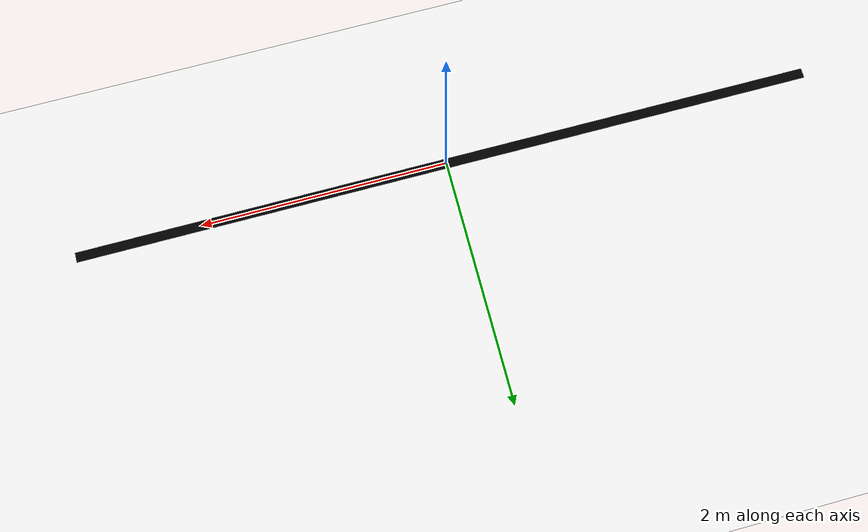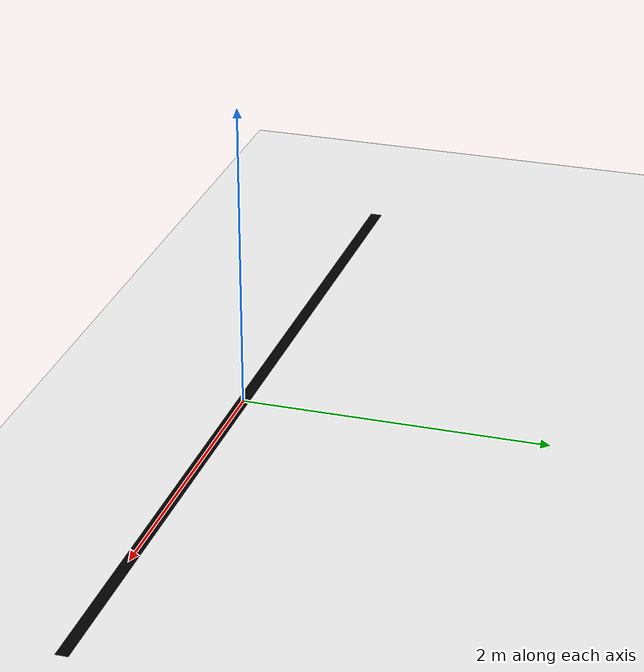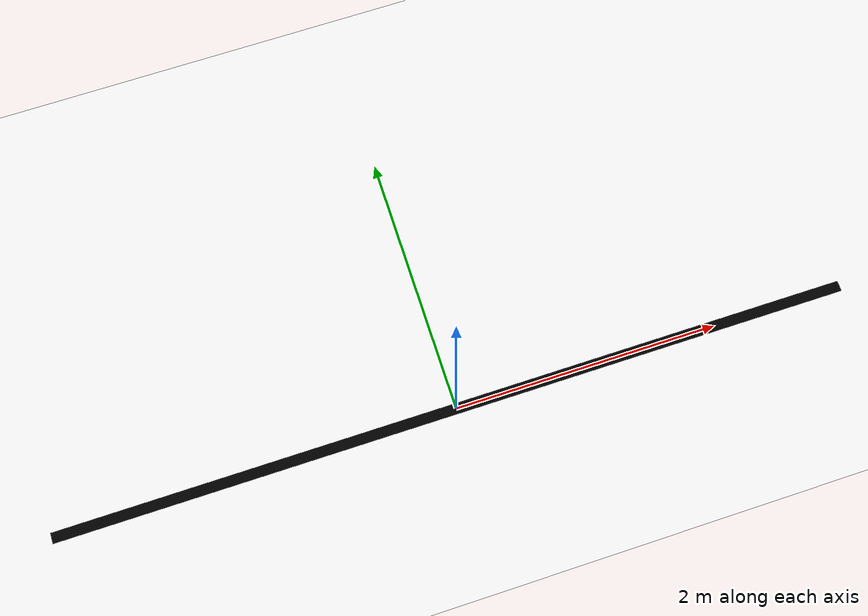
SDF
<?xml version="1.0"?>
<sdf version="1.9">
  <world name="line_following">

    <gravity>0 0 -9.81</gravity>

    <physics name="default_physics" type="ignored">
      <max_step_size>0.001</max_step_size>
      <real_time_factor>1.0</real_time_factor>
    </physics>

    <plugin filename="gz-sim-physics-system"
            name="gz::sim::systems::Physics"/>

    <plugin filename="gz-sim-user-commands-system"
            name="gz::sim::systems::UserCommands"/>

    <plugin filename="gz-sim-scene-broadcaster-system"
            name="gz::sim::systems::SceneBroadcaster"/>

    <light name="sun" type="directional">
      <pose>0 0 10 0 0 0</pose>
      <diffuse>0.8 0.8 0.8 1</diffuse>
      <specular>0.2 0.2 0.2 1</specular>
      <direction>-0.5 0.1 -0.9</direction>
      <cast_shadows>true</cast_shadows>
    </light>

    <model name="ground">
      <static>true</static>
      <link name="ground_link">
        <collision name="ground_collision">
          <geometry>
            <plane>
              <normal>0 0 1</normal>
              <size>10 10</size>
            </plane>
          </geometry>
        </collision>

        <visual name="ground_visual">
          <geometry>
            <plane>
              <normal>0 0 1</normal>
              <size>10 10</size>
            </plane>
          </geometry>
          <material>
            <ambient>1 1 1 1</ambient>
            <diffuse>1 1 1 1</diffuse>
          </material>
        </visual>
      </link>
    </model>

    <model name="straight_line">
      <static>true</static>
      <pose>0 0 0.001 0 0 0</pose>
      <link name="line_link">
        <visual name="line_visual">
          <geometry>
            <plane>
              <normal>0 0 1</normal>
              <size>6 0.08</size>
            </plane>
          </geometry>
          <material>
            <ambient>0 0 0 1</ambient>
            <diffuse>0 0 0 1</diffuse>
          </material>
        </visual>
      </link>
    </model>

  </world>
</sdf>
